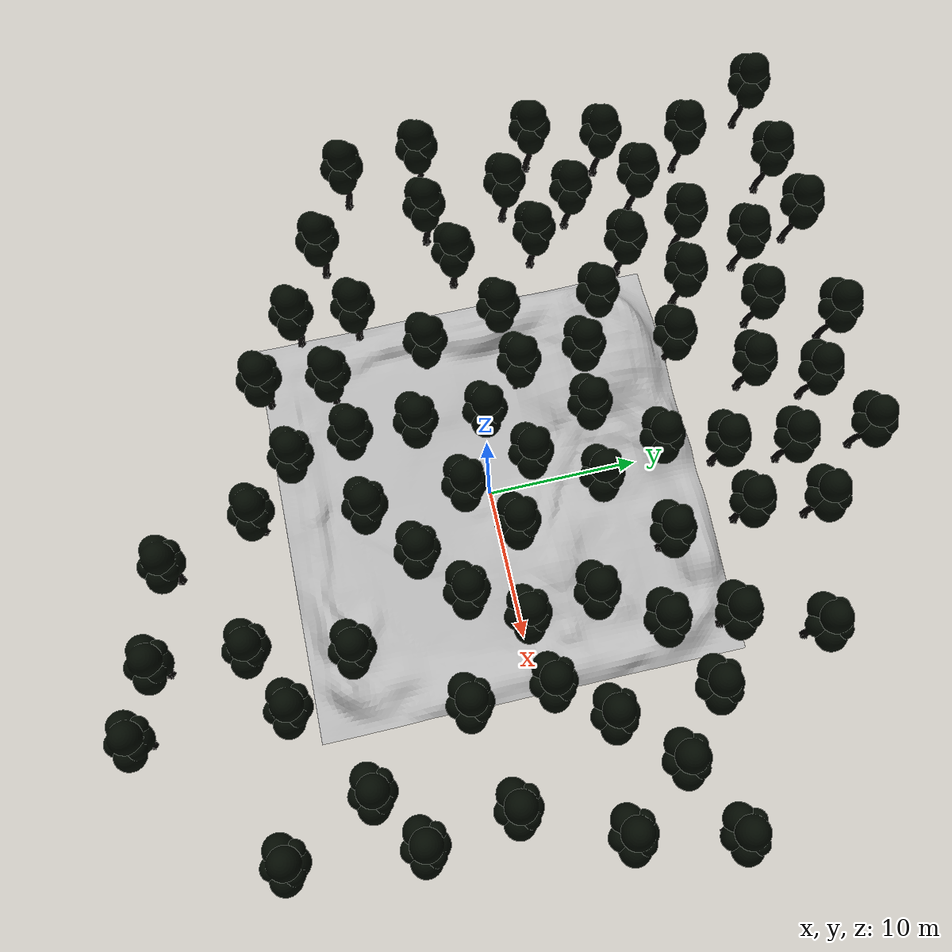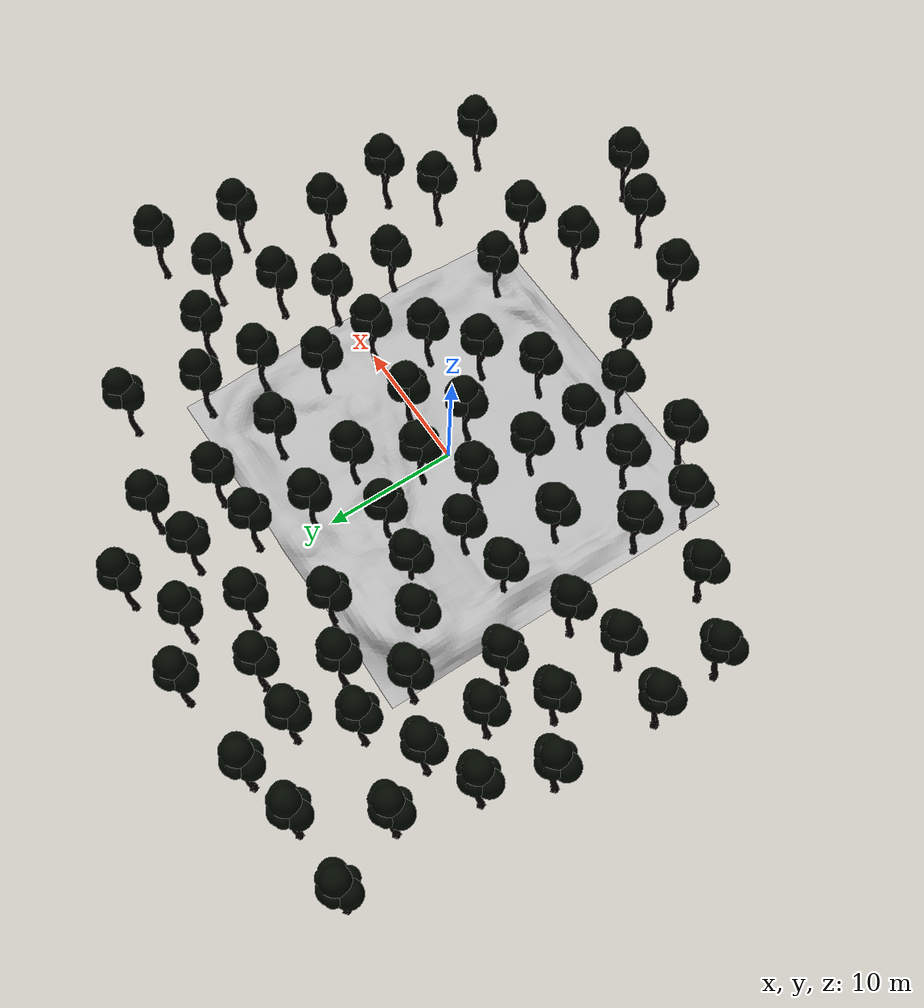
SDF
<sdf version="1.9">
 <world name="forest_trees">
  <plugin name="ignition::gazebo::systems::Physics" filename="ignition-gazebo-physics-system"/>
  <plugin name="ignition::gazebo::systems::UserCommands" filename="ignition-gazebo-user-commands-system"/>
  <plugin name="ignition::gazebo::systems::SceneBroadcaster" filename="ignition-gazebo-scene-broadcaster-system"/>
  <plugin name="ignition::gazebo::systems::Contact" filename="ignition-gazebo-contact-system"/>
  <light name="sun" type="directional">
   <pose>0 0 10 0 0 0</pose>
   <diffuse>1 1 1 1</diffuse>
   <specular>0.2 0.2 0.2 1</specular>
   <direction>-0.5 0.5 -1</direction>
  </light>
  <gravity>0 0 -9.81</gravity>
  <magnetic_field>6e-06 2.3e-05 -4.2e-05</magnetic_field>
  <atmosphere type="adiabatic"/>
  <physics name="default_physics" type="dart">
   <max_step_size>0.001</max_step_size>
   <real_time_update_rate>1000</real_time_update_rate>
  </physics>
  <scene>
   <ambient>0.4 0.4 0.4 0.4</ambient>
   <background>0.6 0.8 1.0 1.0</background>
   <shadows>1</shadows>
   <grid>0</grid>
  </scene>
  <spherical_coordinates>
   <latitude_deg>0.0</latitude_deg>
   <longitude_deg>0.0</longitude_deg>
   <elevation>10.0</elevation>
   <heading_deg>0</heading_deg>
   <surface_model>EARTH_WGS84</surface_model>
  </spherical_coordinates>
  <include><uri>model://forest_env</uri><name>forest_env</name></include>
  <include><uri>model://tree1</uri><name>tree1_0</name><pose>-8.146 20.159 0.246 0 0 0.000000</pose></include>
  <include><uri>model://tree1</uri><name>tree1_1</name><pose>-12.501 20.394 0.658 0 0 0.000000</pose></include>
  <include><uri>model://tree1</uri><name>tree1_2</name><pose>-3.801 18.386 -0.111 0 0 0.000000</pose></include>
  <include><uri>model://tree1</uri><name>tree1_3</name><pose>-6.714 13.776 -0.121 0 0 0.000000</pose></include>
  <include><uri>model://tree1</uri><name>tree1_4</name><pose>-18.049 23.617 1.120 0 0 0.000000</pose></include>
  <include><uri>model://tree1</uri><name>tree1_5</name><pose>0.090 11.072 0.028 0 0 0.000000</pose></include>
  <include><uri>model://tree1</uri><name>tree1_6</name><pose>-21.290 18.356 0.688 0 0 0.000000</pose></include>
  <include><uri>model://tree1</uri><name>tree1_7</name><pose>-6.172 24.949 -0.005 0 0 0.000000</pose></include>
  <include><uri>model://tree1</uri><name>tree1_8</name><pose>-10.923 9.582 -0.246 0 0 0.000000</pose></include>
  <include><uri>model://tree1</uri><name>tree1_9</name><pose>-3.270 7.163 -0.279 0 0 0.000000</pose></include>
  <include><uri>model://tree1</uri><name>tree1_10</name><pose>1.145 15.169 -0.178 0 0 0.000000</pose></include>
  <include><uri>model://tree1</uri><name>tree1_11</name><pose>-18.863 9.626 -0.070 0 0 0.000000</pose></include>
  <include><uri>model://tree1</uri><name>tree1_12</name><pose>-10.860 15.608 0.239 0 0 0.000000</pose></include>
  <include><uri>model://tree1</uri><name>tree1_13</name><pose>-22.572 12.665 0.239 0 0 0.000000</pose></include>
  <include><uri>model://tree1</uri><name>tree1_14</name><pose>6.258 10.070 0.286 0 0 0.000000</pose></include>
  <include><uri>model://tree1</uri><name>tree1_15</name><pose>-4.261 0.436 -0.294 0 0 0.000000</pose></include>
  <include><uri>model://tree1</uri><name>tree1_16</name><pose>-7.346 7.753 -0.296 0 0 0.000000</pose></include>
  <include><uri>model://tree1</uri><name>tree1_17</name><pose>-23.712 23.617 1.118 0 0 0.000000</pose></include>
  <include><uri>model://tree1</uri><name>tree1_18</name><pose>1.864 19.513 -0.179 0 0 0.000000</pose></include>
  <include><uri>model://tree1</uri><name>tree1_19</name><pose>-2.260 22.438 -0.233 0 0 0.000000</pose></include>
  <include><uri>model://tree1</uri><name>tree1_20</name><pose>-11.309 2.864 -0.285 0 0 0.000000</pose></include>
  <include><uri>model://tree1</uri><name>tree1_21</name><pose>-16.385 6.486 -0.252 0 0 0.000000</pose></include>
  <include><uri>model://tree1</uri><name>tree1_22</name><pose>-15.017 16.724 0.561 0 0 0.000000</pose></include>
  <include><uri>model://tree1</uri><name>tree1_23</name><pose>6.072 20.231 -0.111 0 0 0.000000</pose></include>
  <include><uri>model://tree1</uri><name>tree1_24</name><pose>1.666 6.733 -0.110 0 0 0.000000</pose></include>
  <include><uri>model://tree1</uri><name>tree1_25</name><pose>5.415 15.504 -0.042 0 0 0.000000</pose></include>
  <include><uri>model://tree1</uri><name>tree1_26</name><pose>-18.871 14.396 0.394 0 0 0.000000</pose></include>
  <include><uri>model://tree1</uri><name>tree1_27</name><pose>-13.737 24.446 0.948 0 0 0.000000</pose></include>
  <include><uri>model://tree1</uri><name>tree1_28</name><pose>1.988 24.626 -0.067 0 0 0.000000</pose></include>
  <include><uri>model://tree1</uri><name>tree1_29</name><pose>-20.504 5.330 -0.236 0 0 0.000000</pose></include>
  <include><uri>model://tree1</uri><name>tree1_30</name><pose>-0.828 2.707 -0.282 0 0 0.000000</pose></include>
  <include><uri>model://tree1</uri><name>tree1_31</name><pose>8.942 4.582 0.280 0 0 0.000000</pose></include>
  <include><uri>model://tree1</uri><name>tree1_32</name><pose>3.520 0.852 -0.199 0 0 0.000000</pose></include>
  <include><uri>model://tree1</uri><name>tree1_33</name><pose>-15.969 0.752 -0.216 0 0 0.000000</pose></include>
  <include><uri>model://tree1</uri><name>tree1_34</name><pose>0.347 -1.894 -0.280 0 0 0.000000</pose></include>
  <include><uri>model://tree1</uri><name>tree1_35</name><pose>3.941 -5.626 -0.294 0 0 0.000000</pose></include>
  <include><uri>model://tree1</uri><name>tree1_36</name><pose>-7.157 3.345 -0.295 0 0 0.000000</pose></include>
  <include><uri>model://tree1</uri><name>tree1_37</name><pose>-9.878 -2.376 -0.280 0 0 0.000000</pose></include>
  <include><uri>model://tree1</uri><name>tree1_38</name><pose>13.749 0.718 0.264 0 0 0.000000</pose></include>
  <include><uri>model://tree1</uri><name>tree1_39</name><pose>11.545 8.267 0.503 0 0 0.000000</pose></include>
  <include>
   <uri>model://tree1</uri>
   <name>tree1_40</name>
   <pose>-24.380 -0.095 -0.078 0 0 0.000000</pose>
  </include>
  <include><uri>model://tree1</uri><name>tree1_41</name><pose>9.415 0.165 0.084 0 0 0.000000</pose></include>
  <include><uri>model://tree1</uri><name>tree1_42</name><pose>16.062 10.199 0.552 0 0 0.000000</pose></include>
  <include>
   <uri>model://tree1</uri>
   <name>tree1_43</name>
   <pose>-13.389 -6.598 -0.228 0 0 0.000000</pose>
  </include>
  <include>
   <uri>model://tree1</uri>
   <name>tree1_44</name>
   <pose>-19.776 -0.476 -0.112 0 0 0.000000</pose>
  </include>
  <include><uri>model://tree1</uri><name>tree1_45</name><pose>-4.511 -4.064 -0.291 0 0 0.000000</pose></include>
  <include><uri>model://tree1</uri><name>tree1_46</name><pose>13.793 -4.356 -0.155 0 0 0.000000</pose></include>
  <include><uri>model://tree1</uri><name>tree1_47</name><pose>-4.643 -8.320 -0.287 0 0 0.000000</pose></include>
  <include><uri>model://tree1</uri><name>tree1_48</name><pose>9.098 -10.611 -0.232 0 0 0.000000</pose></include>
  <include><uri>model://tree1</uri><name>tree1_49</name><pose>12.029 12.604 0.321 0 0 0.000000</pose></include>
  <include><uri>model://tree1</uri><name>tree1_50</name><pose>16.367 3.791 0.475 0 0 0.000000</pose></include>
  <include><uri>model://tree1</uri><name>tree1_51</name><pose>20.277 -2.877 -0.049 0 0 0.000000</pose></include>
  <include><uri>model://tree1</uri><name>tree1_52</name><pose>0.404 -8.277 -0.290 0 0 0.000000</pose></include>
  <include><uri>model://tree1</uri><name>tree1_53</name><pose>-8.886 -9.024 -0.271 0 0 0.000000</pose></include>
  <include>
   <uri>model://tree1</uri>
   <name>tree1_54</name>
   <pose>-3.933 -12.275 -0.272 0 0 0.000000</pose>
  </include>
  <include><uri>model://tree1</uri><name>tree1_55</name><pose>7.100 -3.147 -0.210 0 0 0.000000</pose></include>
  <include><uri>model://tree1</uri><name>tree1_56</name><pose>-24.265 7.964 -0.192 0 0 0.000000</pose></include>
  <include>
   <uri>model://tree1</uri>
   <name>tree1_57</name>
   <pose>-9.531 -13.464 -0.231 0 0 0.000000</pose>
  </include>
  <include>
   <uri>model://tree1</uri>
   <name>tree1_58</name>
   <pose>-0.744 -15.294 -0.253 0 0 0.000000</pose>
  </include>
  <include>
   <uri>model://tree1</uri>
   <name>tree1_59</name>
   <pose>-23.883 -5.457 -0.022 0 0 0.000000</pose>
  </include>
  <include><uri>model://tree1</uri><name>tree1_60</name><pose>21.116 -8.512 -0.293 0 0 0.000000</pose></include>
  <include><uri>model://tree1</uri><name>tree1_61</name><pose>-14.204 12.336 0.083 0 0 0.000000</pose></include>
  <include><uri>model://tree1</uri><name>tree1_62</name><pose>23.115 3.135 0.453 0 0 0.000000</pose></include>
  <include><uri>model://tree1</uri><name>tree1_63</name><pose>1.372 -21.153 -0.235 0 0 0.000000</pose></include>
  <include><uri>model://tree1</uri><name>tree1_64</name><pose>13.868 17.798 -0.050 0 0 0.000000</pose></include>
  <include><uri>model://tree1</uri><name>tree1_65</name><pose>24.472 9.364 0.361 0 0 0.000000</pose></include>
  <include>
   <uri>model://tree1</uri>
   <name>tree1_66</name>
   <pose>17.569 -10.913 -0.292 0 0 0.000000</pose>
  </include>
  <include>
   <uri>model://tree1</uri>
   <name>tree1_67</name>
   <pose>-18.736 -8.048 -0.111 0 0 0.000000</pose>
  </include>
  <include>
   <uri>model://tree1</uri>
   <name>tree1_68</name>
   <pose>11.722 -14.908 -0.212 0 0 0.000000</pose>
  </include>
  <include><uri>model://tree1</uri><name>tree1_69</name><pose>7.663 -16.811 -0.206 0 0 0.000000</pose></include>
  <include><uri>model://tree1</uri><name>tree1_70</name><pose>7.334 -22.654 -0.266 0 0 0.000000</pose></include>
  <include><uri>model://tree1</uri><name>tree1_71</name><pose>19.762 7.155 0.699 0 0 0.000000</pose></include>
  <include>
   <uri>model://tree1</uri>
   <name>tree1_72</name>
   <pose>-13.754 -10.667 -0.197 0 0 0.000000</pose>
  </include>
  <include>
   <uri>model://tree1</uri>
   <name>tree1_73</name>
   <pose>20.312 -16.451 -0.295 0 0 0.000000</pose>
  </include>
  <include>
   <uri>model://tree1</uri>
   <name>tree1_74</name>
   <pose>11.523 -24.305 -0.294 0 0 0.000000</pose>
  </include>
 </world>
</sdf>

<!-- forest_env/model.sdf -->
<sdf version="1.9">
  <model name="forest_env">
    <static>true</static>
    <link name="ground_link">

      <!-- VISUAL: hilly mesh -->
      <visual name="ground_visual">
        <geometry>
          <mesh>
            <uri>model://forest_env/meshes/Environment1.dae</uri>
            <scale>17.5 17.5 17.5</scale>
          </mesh>
        </geometry>
      </visual>

      <!-- COLLISION: match the visual (same uri + scale) -->
      <collision name="ground_collision">
        <geometry>
          <mesh>
            <!-- use a simplified collision mesh if you have one: Environment1_col.stl -->
            <uri>model://forest_env/meshes/Environment1.dae</uri>
            <scale>17.5 17.5 17.5</scale>
          </mesh>
        </geometry>
        <surface>
          <contact>
            <ode>
              <kp>2e6</kp>
              <kd>1.0</kd>
              <max_vel>0.2</max_vel>
              <min_depth>0.001</min_depth>
            </ode>
          </contact>
          <friction><ode><mu>1.0</mu><mu2>1.0</mu2></ode></friction>
        </surface>
      </collision>

    </link>
  </model>
</sdf>

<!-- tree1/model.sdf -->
<sdf version="1.9">
  <model name="tree1">
    <static>true</static>
    <link name="tree_link">
      <visual name="tree_visual">
        <geometry>
          <mesh>
            <uri>model://tree1/meshes/tree_a.dae</uri>
            <scale>0.4 0.4 0.5</scale>
          </mesh>
        </geometry>
      </visual>
      <collision name="tree_collision">
        <geometry>
          <mesh>
            <uri>model://tree1/meshes/tree_a.dae</uri>
            <scale>0.4 0.4 0.5</scale>
          </mesh>
        </geometry>
      </collision>
    </link>
  </model>
</sdf>
